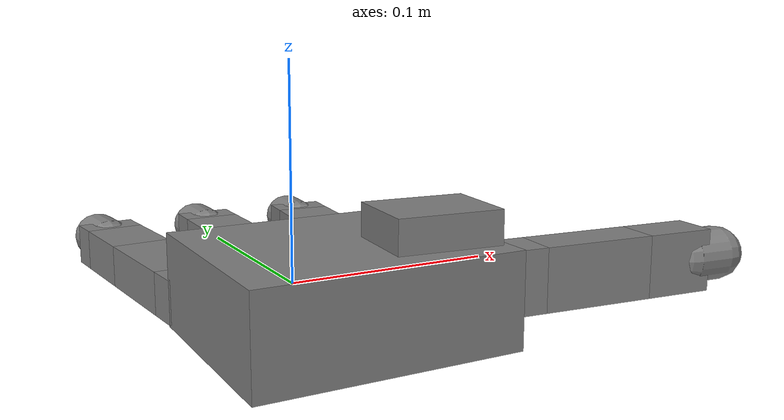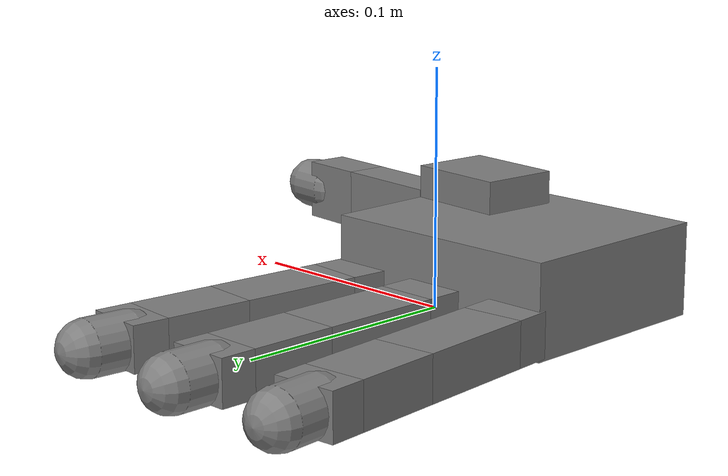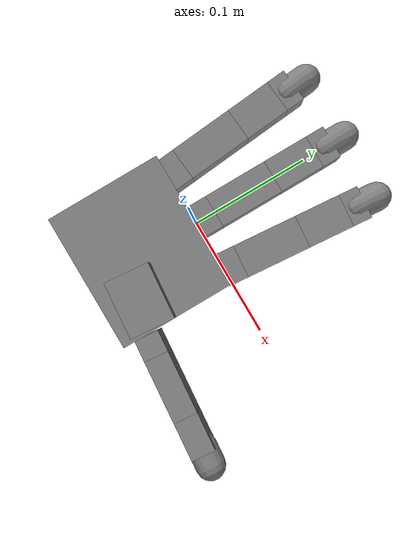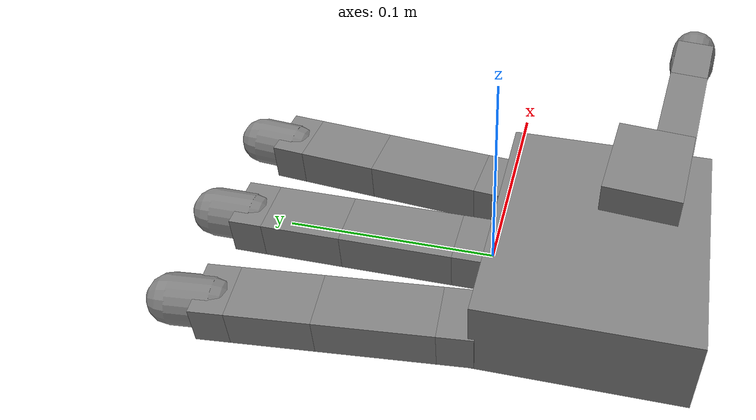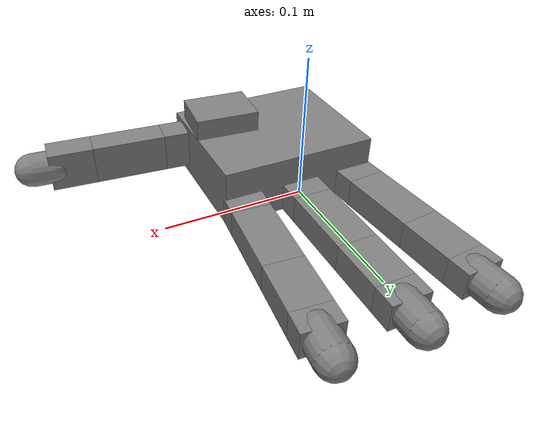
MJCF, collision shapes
<mujoco model="allegro_left">
  <compiler angle="radian" meshdir="assets" autolimits="true"/>

  <option cone="elliptic" impratio="10"/>

  <default>
    <default class="allegro_left">
      <joint axis="0 1 0" damping=".1"/>
      <position kp="1"/>
      <geom density="800"/>

      <default class="visual">
        <geom type="mesh" contype="0" conaffinity="0" group="2" material="black"/>
        <default class="palm_visual">
          <geom mesh="base_link"/>
        </default>
        <default class="base_visual">
          <geom mesh="link_0.0"/>
        </default>
        <default class="proximal_visual">
          <geom mesh="link_1.0"/>
        </default>
        <default class="medial_visual">
          <geom mesh="link_2.0"/>
        </default>
        <default class="distal_visual">
          <geom mesh="link_3.0"/>
        </default>
        <default class="fingertip_visual">
          <geom pos="0 0 0.0267" material="white" mesh="link_3.0_tip"/>
        </default>
        <default class="thumbtip_visual">
          <geom pos="0 0 0.0423" material="white" mesh="link_15.0_tip"/>
        </default>
      </default>

      <default class="collision">
        <geom group="3" type="box" mass="0"/>
        <default class="palm_collision">
          <geom size="0.0204 0.0565 0.0475" pos="-0.0093 0 -0.0475"/>
        </default>
        <default class="base_collision">
          <geom size="0.0098 0.01375 0.0082" pos="0 0 0.0082"/>
          <default class="thumb_base_collision">
            <geom size="0.0179 0.017 0.02275" pos="-0.0179 0.009 0.0145"/>
          </default>
        </default>
        <default class="proximal_collision">
          <geom size="0.0098 0.01375 0.027" pos="0 0 0.027"/>
          <default class="thumb_proximal_collision">
            <geom size="0.0098 0.01375 0.00885" pos="0 0 0.00885"/>
          </default>
        </default>
        <default class="medial_collision">
          <geom size="0.0098 0.01375 0.0192" pos="0 0 0.0192"/>
          <default class="thumb_medial_collision">
            <geom size="0.0098 0.01375 0.0257" pos="0 0 0.0257"/>
          </default>
        </default>
        <default class="distal_collision">
          <geom size="0.0098 0.01375 0.008" pos="0 0 0.008"/>
          <default class="thumb_distal_collision">
            <geom size="0.0098 0.01375 0.0157" pos="0 0 0.0157"/>
          </default>
        </default>
        <default class="fingertip_collision">
          <geom type="capsule" size="0.012 0.01" pos="0 0 0.019"/>
          <default class="thumbtip_collision">
            <geom type="capsule" size="0.012 0.008" pos="0 0 0.035"/>
          </default>
        </default>
      </default>

      <default class="base">
        <joint axis="0 0 1" range="-0.47 0.47"/>
        <position ctrlrange="-0.47 0.47"/>
      </default>
      <default class="proximal">
        <joint range="-0.196 1.61"/>
        <position ctrlrange="-0.196 1.61"/>
      </default>
      <default class="medial">
        <joint range="-0.174 1.709"/>
        <position ctrlrange="-0.174 1.709"/>
      </default>
      <default class="distal">
        <joint range="-0.227 1.618"/>
        <position ctrlrange="-0.227 1.618"/>
      </default>
      <default class="thumb_base">
        <joint axis="1 0 0" range="0.263 1.396"/>
        <position ctrlrange="0.263 1.396"/>
      </default>
      <default class="thumb_proximal">
        <joint axis="0 0 -1" range="-0.105 1.163"/>
        <position ctrlrange="-0.105 1.163"/>
      </default>
      <default class="thumb_medial">
        <joint range="-0.189 1.644"/>
        <position ctrlrange="-0.189 1.644"/>
      </default>
      <default class="thumb_distal">
        <joint range="-0.162 1.719"/>
        <position ctrlrange="-0.162 1.719"/>
      </default>
    </default>
  </default>

  <asset>
    <material name="black" rgba="0.2 0.2 0.2 1"/>
    <material name="white" rgba="0.9 0.9 0.9 1"/>

    <mesh file="base_link_left.stl"/>
    <mesh file="link_0.0.stl"/>
    <mesh file="link_1.0.stl"/>
    <mesh file="link_2.0.stl"/>
    <mesh file="link_3.0.stl"/>
    <mesh file="link_3.0_tip.stl"/>
    <mesh file="link_12.0_left.stl"/>
    <mesh file="link_13.0.stl"/>
    <mesh file="link_14.0.stl"/>
    <mesh file="link_15.0.stl"/>
    <mesh file="link_15.0_tip.stl"/>
  </asset>

  <worldbody>
    <body name="lh_palm" quat="-0.5 0.5 -0.5 -0.5" childclass="allegro_left">
      <!-- add dof for wrist -->
      <joint name="lh_wrist_ty" type="slide" pos="0 0 -0.1" axis="0 0 1" range="0. 0.06" damping="24"/>
      <joint name="lh_wrist_tx" type="slide" pos="0 0 -0.1" axis="0 -1 0" range="-1. 1." damping="24"/>
      <joint name="lh_wrist_yaw" type="hinge" axis="1 0 0" pos="0 0 -0.1" range="-0.523599 0.174533" damping="24"/>
      <joint name="lh_wrist_pitch" type="hinge" axis="0 1 0" pos="0 0 -0.1" range="-0.174533 0.174533" damping="24"/>

      <geom quat="1 -1 0 0" class="palm_visual" mesh="base_link_left"/>
      <geom class="palm_collision"/>
      <!-- Ring finger -->
      <body name="lh_rf_base" pos="0 0.0435 -0.001542" quat="0.999048 -0.0436194 0 0">
        <joint name="lh_rfj0" class="base"/>
        <geom class="base_visual"/>
        <geom class="base_collision"/>
        <body name="lh_rf_proximal" pos="0 0 0.0164">
          <joint name="lh_rfj1" class="proximal"/>
          <geom class="proximal_visual"/>
          <geom class="proximal_collision"/>
          <body name="lh_rf_medial" pos="0 0 0.054">
            <joint name="lh_rfj2" class="medial"/>
            <geom class="medial_visual"/>
            <geom class="medial_collision"/>
            <body name="lh_rf_distal" pos="0 0 0.0384">
              <joint name="lh_rfj3" class="distal"/>
              <geom class="distal_visual"/>
              <geom class="distal_collision"/>
              <body name="lh_rf_tip">
                <geom class="fingertip_visual"/>
                <geom class="fingertip_collision"/>
              </body>
            </body>
          </body>
        </body>
      </body>
      <!-- Middle finger -->
      <body name="lh_mf_base" pos="0 0 0.0007">
        <joint name="lh_mfj0" class="base"/>
        <geom class="base_visual"/>
        <geom class="base_collision"/>
        <body name="lh_mf_proximal" pos="0 0 0.0164">
          <joint name="lh_mfj1" class="proximal"/>
          <geom class="proximal_visual"/>
          <geom class="proximal_collision"/>
          <body name="lh_mf_medial" pos="0 0 0.054">
            <joint name="lh_mfj2" class="medial"/>
            <geom class="medial_visual"/>
            <geom class="medial_collision"/>
            <body name="lh_mf_distal" pos="0 0 0.0384">
              <joint name="lh_mfj3" class="distal"/>
              <geom class="distal_visual"/>
              <geom class="distal_collision"/>
              <body name="lh_mf_tip">
                <geom class="fingertip_visual"/>
                <geom class="fingertip_collision"/>
              </body>
            </body>
          </body>
        </body>
      </body>
      <!-- First finger -->
      <body name="lh_ff_base" pos="0 -0.0435 -0.001542" quat="0.999048 0.0436194 0 0">
        <joint name="lh_ffj0" class="base"/>
        <geom class="base_visual"/>
        <geom class="base_collision"/>
        <body name="lh_ff_proximal" pos="0 0 0.0164">
          <joint name="lh_ffj1" class="proximal"/>
          <geom class="proximal_visual"/>
          <geom class="proximal_collision"/>
          <body name="lh_ff_medial" pos="0 0 0.054">
            <joint name="lh_ffj2" class="medial"/>
            <geom class="medial_visual"/>
            <geom class="medial_collision"/>
            <body name="lh_ff_distal" pos="0 0 0.0384">
              <joint name="lh_ffj3" class="distal"/>
              <geom class="distal_visual"/>
              <geom class="distal_collision"/>
              <body name="lh_ff_tip">
                <geom class="fingertip_visual"/>
                <geom class="fingertip_collision"/>
              </body>
            </body>
          </body>
        </body>
      </body>
      <!-- Thumb -->
      <body name="lh_th_base" pos="-0.0182 -0.019333 -0.045987" quat="0.477714 0.521334 -0.521334 0.477714">
        <joint name="lh_thj0" class="thumb_base"/>
        <geom quat="0 1 0 0" class="visual" mesh="link_12.0_left"/>
        <geom class="thumb_base_collision"/>
        <body name="lh_th_proximal" pos="-0.027 -0.005 0.0399">
          <joint name="lh_thj1" class="thumb_proximal"/>
          <geom class="visual" mesh="link_13.0"/>
          <geom class="thumb_proximal_collision"/>
          <body name="lh_th_medial" pos="0 0 0.0177">
            <joint name="lh_thj2" class="thumb_medial"/>
            <geom class="visual" mesh="link_14.0"/>
            <geom class="thumb_medial_collision"/>
            <body name="lh_th_distal" pos="0 0 0.0514">
              <joint name="lh_thj3" class="thumb_distal"/>
              <geom class="visual" mesh="link_15.0"/>
              <geom class="thumb_distal_collision"/>
              <body name="lh_th_tip">
                <geom class="thumbtip_visual"/>
                <geom class="thumbtip_collision"/>
              </body>
            </body>
          </body>
        </body>
      </body>
    </body>
  </worldbody>

  <contact>
    <exclude body1="lh_palm" body2="lh_ff_base"/>
    <exclude body1="lh_palm" body2="lh_mf_base"/>
    <exclude body1="lh_palm" body2="lh_rf_base"/>
    <exclude body1="lh_palm" body2="lh_th_base"/>
    <exclude body1="lh_palm" body2="lh_th_proximal"/>
  </contact>

  <actuator>
    <position name="lh_ffa0" joint="lh_ffj0" class="base"/>
    <position name="lh_ffa1" joint="lh_ffj1" class="proximal"/>
    <position name="lh_ffa2" joint="lh_ffj2" class="medial"/>
    <position name="lh_ffa3" joint="lh_ffj3" class="distal"/>
    <position name="lh_mfa0" joint="lh_mfj0" class="base"/>
    <position name="lh_mfa1" joint="lh_mfj1" class="proximal"/>
    <position name="lh_mfa2" joint="lh_mfj2" class="medial"/>
    <position name="lh_mfa3" joint="lh_mfj3" class="distal"/>
    <position name="lh_rfa0" joint="lh_rfj0" class="base"/>
    <position name="lh_rfa1" joint="lh_rfj1" class="proximal"/>
    <position name="lh_rfa2" joint="lh_rfj2" class="medial"/>
    <position name="lh_rfa3" joint="lh_rfj3" class="distal"/>
    <position name="lh_tha0" joint="lh_thj0" class="thumb_base"/>
    <position name="lh_tha1" joint="lh_thj1" class="thumb_proximal"/>
    <position name="lh_tha2" joint="lh_thj2" class="thumb_medial"/>
    <position name="lh_tha3" joint="lh_thj3" class="thumb_distal"/>
    <position name="lh_wrist_pitch" joint="lh_wrist_pitch" kp="300" ctrlrange="-0.174533 0.174533"/>
    <position name="lh_wrist_yaw" joint="lh_wrist_yaw" kp="300" ctrlrange="-0.523599 0.174533"/>
    <position name="lh_wrist_ty" joint="lh_wrist_ty" kp="300" ctrlrange="0. 0.06"/>
    <position name="lh_wrist_tx" joint="lh_wrist_tx" kp="300" ctrlrange="-1. 1."/>
  </actuator>
</mujoco>
